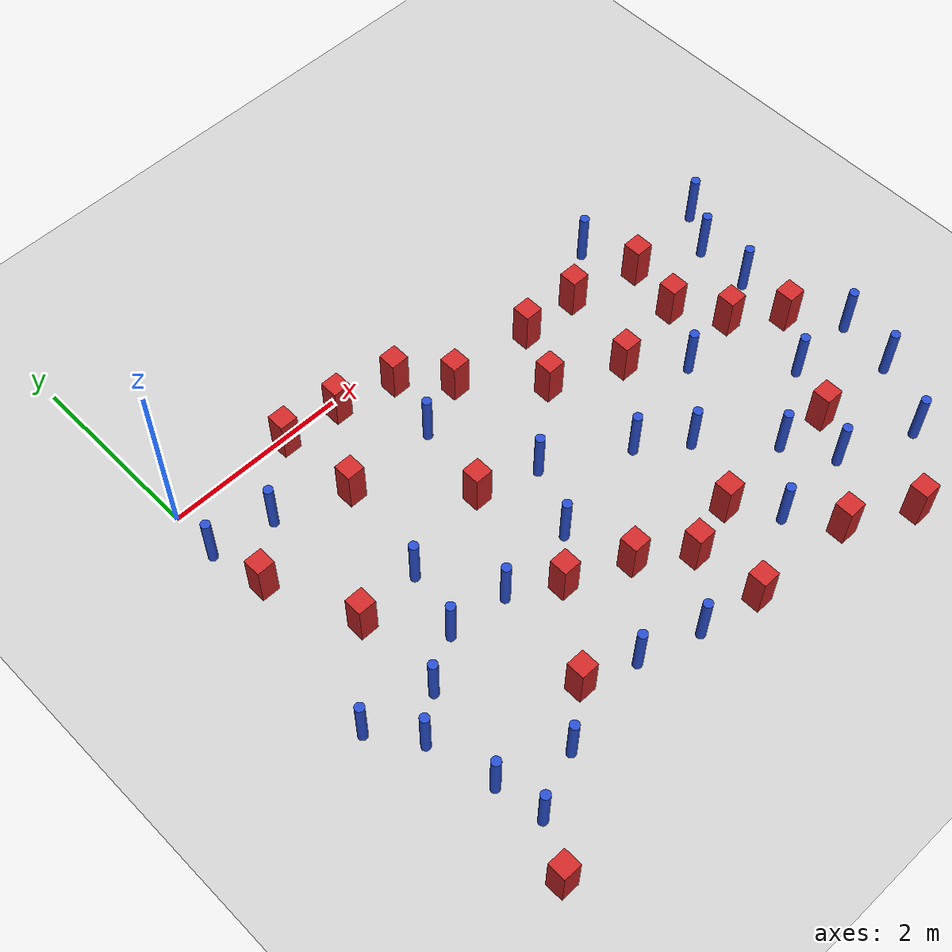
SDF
<sdf version="1.6">
 <world name="default">
  <model name="ground_plane">
   <static>1</static>
   <link name="link">
    <collision name="collision">
     <geometry><plane><normal>0 0 1</normal><size>100 100</size></plane></geometry>
     <surface><friction><ode><mu>100</mu><mu2>50</mu2></ode></friction></surface>
    </collision>
    <visual name="visual">
     <cast_shadows>0</cast_shadows>
     <geometry><plane><normal>0 0 1</normal><size>100 100</size></plane></geometry>
     <material>
      <ambient>1.0 1.0 1.0 1.0</ambient>
      <diffuse>0.8 0.8 0.8 1.0</diffuse>
      <specular>0.01 0.01 0.01 1.000000</specular>
     </material>
    </visual>
   </link>
  </model>
  <model name="pole_obstacle0">
   <static>true</static>
   <pose>2.41326666451 -0.959669748231 -3.09024884793e-07 -7.19054271912e-07 -2.11315075118e-07 -1.93935509258e-07</pose>
   <link name="link">
    <pose>0 0 0.3 0 -0 0</pose>
    <inertial>
     <mass>1</mass>
     <inertia><ixx>0.145833</ixx><ixy>0</ixy><ixz>0</ixz><iyy>0.145833</iyy><iyz>0</iyz><izz>0.125</izz></inertia>
    </inertial>
    <collision name="collision">
     <geometry><cylinder><radius>0.05</radius><length>.6</length></cylinder></geometry>
    </collision>
    <visual name="visual">
     <geometry><cylinder><radius>0.05</radius><length>.6</length></cylinder></geometry>
     <material>
      <script><name>Gazebo/Blue</name><uri>file://media/materials/scripts/gazebo.material</uri></script>
     </material>
    </visual>
   </link>
  </model>
  <model name="square_post_obstacle4">
   <static>true</static>
   <pose>1.31986433456 -0.0795674390711 -4.36207812815e-07 3.75137919937e-06 9.77721102514e-07 2.47381364184e-05</pose>
   <link name="link">
    <pose>0 0 0.25 0 -0 0</pose>
    <inertial>
     <mass>100</mass>
     <inertia>
      <ixx>0.166667</ixx>
      <ixy>0</ixy>
      <ixz>0</ixz>
      <iyy>0.166667</iyy>
      <iyz>0</iyz>
      <izz>0.166667</izz>
     </inertia>
    </inertial>
    <collision name="collision"><geometry><box><size>.2 .2 .5</size></box></geometry></collision>
    <visual name="visual">
     <geometry><box><size>.2 .2 .5</size></box></geometry>
     <material>
      <script><name>Gazebo/Red</name><uri>file://media/materials/scripts/gazebo.material</uri></script>
     </material>
    </visual>
   </link>
  </model>
  <model name="square_post_obstacle11">
   <static>true</static>
   <pose>0.119357444727 -1.15972905448 -4.36207812815e-07 3.75137919937e-06 9.77721102514e-07 2.47381364184e-05</pose>
   <link name="link">
    <pose>0 0 0.25 0 -0 0</pose>
    <inertial>
     <mass>100</mass>
     <inertia>
      <ixx>0.166667</ixx>
      <ixy>0</ixy>
      <ixz>0</ixz>
      <iyy>0.166667</iyy>
      <iyz>0</iyz>
      <izz>0.166667</izz>
     </inertia>
    </inertial>
    <collision name="collision"><geometry><box><size>.2 .2 .5</size></box></geometry></collision>
    <visual name="visual">
     <geometry><box><size>.2 .2 .5</size></box></geometry>
     <material>
      <script><name>Gazebo/Red</name><uri>file://media/materials/scripts/gazebo.material</uri></script>
     </material>
    </visual>
   </link>
  </model>
  <model name="square_post_obstacle15">
   <static>true</static>
   <pose>3.97810140342 -0.776497119024 -4.36207812815e-07 3.75137919937e-06 9.77721102514e-07 2.47381364184e-05</pose>
   <link name="link">
    <pose>0 0 0.25 0 -0 0</pose>
    <inertial>
     <mass>100</mass>
     <inertia>
      <ixx>0.166667</ixx>
      <ixy>0</ixy>
      <ixz>0</ixz>
      <iyy>0.166667</iyy>
      <iyz>0</iyz>
      <izz>0.166667</izz>
     </inertia>
    </inertial>
    <collision name="collision"><geometry><box><size>.2 .2 .5</size></box></geometry></collision>
    <visual name="visual">
     <geometry><box><size>.2 .2 .5</size></box></geometry>
     <material>
      <script><name>Gazebo/Red</name><uri>file://media/materials/scripts/gazebo.material</uri></script>
     </material>
    </visual>
   </link>
  </model>
  <model name="pole_obstacle9">
   <static>true</static>
   <pose>2.89782994441 -2.0281531749 -3.09024884793e-07 -7.19054271912e-07 -2.11315075127e-07 -1.93935509262e-07</pose>
   <link name="link">
    <pose>0 0 0.3 0 -0 0</pose>
    <inertial>
     <mass>1</mass>
     <inertia><ixx>0.145833</ixx><ixy>0</ixy><ixz>0</ixz><iyy>0.145833</iyy><iyz>0</iyz><izz>0.125</izz></inertia>
    </inertial>
    <collision name="collision">
     <geometry><cylinder><radius>0.05</radius><length>.6</length></cylinder></geometry>
    </collision>
    <visual name="visual">
     <geometry><cylinder><radius>0.05</radius><length>.6</length></cylinder></geometry>
     <material>
      <script><name>Gazebo/Blue</name><uri>file://media/materials/scripts/gazebo.material</uri></script>
     </material>
    </visual>
   </link>
  </model>
  <model name="square_post_obstacle17">
   <static>true</static>
   <pose>3.66579948599 -1.40427711125 -4.36207812815e-07 3.75137919937e-06 9.77721102514e-07 2.47381364184e-05</pose>
   <link name="link">
    <pose>0 0 0.25 0 -0 0</pose>
    <inertial>
     <mass>100</mass>
     <inertia>
      <ixx>0.166667</ixx>
      <ixy>0</ixy>
      <ixz>0</ixz>
      <iyy>0.166667</iyy>
      <iyz>0</iyz>
      <izz>0.166667</izz>
     </inertia>
    </inertial>
    <collision name="collision"><geometry><box><size>.2 .2 .5</size></box></geometry></collision>
    <visual name="visual">
     <geometry><box><size>.2 .2 .5</size></box></geometry>
     <material>
      <script><name>Gazebo/Red</name><uri>file://media/materials/scripts/gazebo.material</uri></script>
     </material>
    </visual>
   </link>
  </model>
  <model name="square_post_obstacle18">
   <static>true</static>
   <pose>2.58968893634 -0.286422892999 -4.36207812815e-07 3.75137919937e-06 9.77721102514e-07 2.47381364184e-05</pose>
   <link name="link">
    <pose>0 0 0.25 0 -0 0</pose>
    <inertial>
     <mass>100</mass>
     <inertia>
      <ixx>0.166667</ixx>
      <ixy>0</ixy>
      <ixz>0</ixz>
      <iyy>0.166667</iyy>
      <iyz>0</iyz>
      <izz>0.166667</izz>
     </inertia>
    </inertial>
    <collision name="collision"><geometry><box><size>.2 .2 .5</size></box></geometry></collision>
    <visual name="visual">
     <geometry><box><size>.2 .2 .5</size></box></geometry>
     <material>
      <script><name>Gazebo/Red</name><uri>file://media/materials/scripts/gazebo.material</uri></script>
     </material>
    </visual>
   </link>
  </model>
  <model name="square_post_obstacle20">
   <static>true</static>
   <pose>4.63659688607 -0.795210823432 -4.36207812815e-07 3.75137919937e-06 9.77721102514e-07 2.47381364184e-05</pose>
   <link name="link">
    <pose>0 0 0.25 0 -0 0</pose>
    <inertial>
     <mass>100</mass>
     <inertia>
      <ixx>0.166667</ixx>
      <ixy>0</ixy>
      <ixz>0</ixz>
      <iyy>0.166667</iyy>
      <iyz>0</iyz>
      <izz>0.166667</izz>
     </inertia>
    </inertial>
    <collision name="collision"><geometry><box><size>.2 .2 .5</size></box></geometry></collision>
    <visual name="visual">
     <geometry><box><size>.2 .2 .5</size></box></geometry>
     <material>
      <script><name>Gazebo/Red</name><uri>file://media/materials/scripts/gazebo.material</uri></script>
     </material>
    </visual>
   </link>
  </model>
  <model name="pole_obstacle14">
   <static>true</static>
   <pose>-0.220990663885 -2.92451951787 -3.09024884848e-07 -7.19054271902e-07 -2.11315075205e-07 -1.93935509288e-07</pose>
   <link name="link">
    <pose>0 0 0.3 0 -0 0</pose>
    <inertial>
     <mass>1</mass>
     <inertia><ixx>0.145833</ixx><ixy>0</ixy><ixz>0</ixz><iyy>0.145833</iyy><iyz>0</iyz><izz>0.125</izz></inertia>
    </inertial>
    <collision name="collision">
     <geometry><cylinder><radius>0.05</radius><length>.6</length></cylinder></geometry>
    </collision>
    <visual name="visual">
     <geometry><cylinder><radius>0.05</radius><length>.6</length></cylinder></geometry>
     <material>
      <script><name>Gazebo/Blue</name><uri>file://media/materials/scripts/gazebo.material</uri></script>
     </material>
    </visual>
   </link>
  </model>
  <model name="pole_obstacle33">
   <static>true</static>
   <pose>0.518498459456 -3.06528622621 -3.09024884793e-07 -7.19054271912e-07 -2.11315075126e-07 -1.93935509261e-07</pose>
   <link name="link">
    <pose>0 0 0.3 0 -0 0</pose>
    <inertial>
     <mass>1</mass>
     <inertia><ixx>0.145833</ixx><ixy>0</ixy><ixz>0</ixz><iyy>0.145833</iyy><iyz>0</iyz><izz>0.125</izz></inertia>
    </inertial>
    <collision name="collision">
     <geometry><cylinder><radius>0.05</radius><length>.6</length></cylinder></geometry>
    </collision>
    <visual name="visual">
     <geometry><cylinder><radius>0.05</radius><length>.6</length></cylinder></geometry>
     <material>
      <script><name>Gazebo/Blue</name><uri>file://media/materials/scripts/gazebo.material</uri></script>
     </material>
    </visual>
   </link>
  </model>
  <model name="pole_obstacle50">
   <static>true</static>
   <pose>0.28187132032 -4.10309851028 -3.09024884793e-07 -7.19054271912e-07 -2.11315075127e-07 -1.9393550926e-07</pose>
   <link name="link">
    <pose>0 0 0.3 0 -0 0</pose>
    <inertial>
     <mass>1</mass>
     <inertia><ixx>0.145833</ixx><ixy>0</ixy><ixz>0</ixz><iyy>0.145833</iyy><iyz>0</iyz><izz>0.125</izz></inertia>
    </inertial>
    <collision name="collision">
     <geometry><cylinder><radius>0.05</radius><length>.6</length></cylinder></geometry>
    </collision>
    <visual name="visual">
     <geometry><cylinder><radius>0.05</radius><length>.6</length></cylinder></geometry>
     <material>
      <script><name>Gazebo/Blue</name><uri>file://media/materials/scripts/gazebo.material</uri></script>
     </material>
    </visual>
   </link>
  </model>
  <model name="pole_obstacle54">
   <static>true</static>
   <pose>2.55761728568 -2.72044347075 -3.09024884793e-07 -7.19054271912e-07 -2.11315075144e-07 -1.93935509271e-07</pose>
   <link name="link">
    <pose>0 0 0.3 0 -0 0</pose>
    <inertial>
     <mass>1</mass>
     <inertia><ixx>0.145833</ixx><ixy>0</ixy><ixz>0</ixz><iyy>0.145833</iyy><iyz>0</iyz><izz>0.125</izz></inertia>
    </inertial>
    <collision name="collision">
     <geometry><cylinder><radius>0.05</radius><length>.6</length></cylinder></geometry>
    </collision>
    <visual name="visual">
     <geometry><cylinder><radius>0.05</radius><length>.6</length></cylinder></geometry>
     <material>
      <script><name>Gazebo/Blue</name><uri>file://media/materials/scripts/gazebo.material</uri></script>
     </material>
    </visual>
   </link>
  </model>
  <model name="square_post_obstacle60">
   <static>true</static>
   <pose>5.2823380912 -1.58300626166 -4.36207812815e-07 3.75137919937e-06 9.77721102514e-07 2.47381364184e-05</pose>
   <link name="link">
    <pose>0 0 0.25 0 -0 0</pose>
    <inertial>
     <mass>100</mass>
     <inertia>
      <ixx>0.166667</ixx>
      <ixy>0</ixy>
      <ixz>0</ixz>
      <iyy>0.166667</iyy>
      <iyz>0</iyz>
      <izz>0.166667</izz>
     </inertia>
    </inertial>
    <collision name="collision"><geometry><box><size>.2 .2 .5</size></box></geometry></collision>
    <visual name="visual">
     <geometry><box><size>.2 .2 .5</size></box></geometry>
     <material>
      <script><name>Gazebo/Red</name><uri>file://media/materials/scripts/gazebo.material</uri></script>
     </material>
    </visual>
   </link>
  </model>
  <model name="square_post_obstacle66">
   <static>true</static>
   <pose>4.41290259775 -1.74374216886 -4.36207812815e-07 3.75137919937e-06 9.77721102514e-07 2.47381364184e-05</pose>
   <link name="link">
    <pose>0 0 0.25 0 -0 0</pose>
    <inertial>
     <mass>100</mass>
     <inertia>
      <ixx>0.166667</ixx>
      <ixy>0</ixy>
      <ixz>0</ixz>
      <iyy>0.166667</iyy>
      <iyz>0</iyz>
      <izz>0.166667</izz>
     </inertia>
    </inertial>
    <collision name="collision"><geometry><box><size>.2 .2 .5</size></box></geometry></collision>
    <visual name="visual">
     <geometry><box><size>.2 .2 .5</size></box></geometry>
     <material>
      <script><name>Gazebo/Red</name><uri>file://media/materials/scripts/gazebo.material</uri></script>
     </material>
    </visual>
   </link>
  </model>
  <model name="pole_obstacle65">
   <static>true</static>
   <pose>1.02935842153 -2.75163102103 -3.09024884793e-07 -7.19054271912e-07 -2.11315075133e-07 -1.93935509263e-07</pose>
   <link name="link">
    <pose>0 0 0.3 0 -0 0</pose>
    <inertial>
     <mass>1</mass>
     <inertia><ixx>0.145833</ixx><ixy>0</ixy><ixz>0</ixz><iyy>0.145833</iyy><iyz>0</iyz><izz>0.125</izz></inertia>
    </inertial>
    <collision name="collision">
     <geometry><cylinder><radius>0.05</radius><length>.6</length></cylinder></geometry>
    </collision>
    <visual name="visual">
     <geometry><cylinder><radius>0.05</radius><length>.6</length></cylinder></geometry>
     <material>
      <script><name>Gazebo/Blue</name><uri>file://media/materials/scripts/gazebo.material</uri></script>
     </material>
    </visual>
   </link>
  </model>
  <model name="pole_obstacle66">
   <static>true</static>
   <pose>6.11850425659 -1.86344914233 -3.09024884793e-07 -7.19054271912e-07 -2.11315075124e-07 -1.93935509261e-07</pose>
   <link name="link">
    <pose>0 0 0.3 0 -0 0</pose>
    <inertial>
     <mass>1</mass>
     <inertia><ixx>0.145833</ixx><ixy>0</ixy><ixz>0</ixz><iyy>0.145833</iyy><iyz>0</iyz><izz>0.125</izz></inertia>
    </inertial>
    <collision name="collision">
     <geometry><cylinder><radius>0.05</radius><length>.6</length></cylinder></geometry>
    </collision>
    <visual name="visual">
     <geometry><cylinder><radius>0.05</radius><length>.6</length></cylinder></geometry>
     <material>
      <script><name>Gazebo/Blue</name><uri>file://media/materials/scripts/gazebo.material</uri></script>
     </material>
    </visual>
   </link>
  </model>
  <model name="square_post_obstacle70">
   <static>true</static>
   <pose>3.87898751134 -3.58622233639 -4.36207812815e-07 3.75137919937e-06 9.77721102514e-07 2.47381364184e-05</pose>
   <link name="link">
    <pose>0 0 0.25 0 -0 0</pose>
    <inertial>
     <mass>100</mass>
     <inertia>
      <ixx>0.166667</ixx>
      <ixy>0</ixy>
      <ixz>0</ixz>
      <iyy>0.166667</iyy>
      <iyz>0</iyz>
      <izz>0.166667</izz>
     </inertia>
    </inertial>
    <collision name="collision"><geometry><box><size>.2 .2 .5</size></box></geometry></collision>
    <visual name="visual">
     <geometry><box><size>.2 .2 .5</size></box></geometry>
     <material>
      <script><name>Gazebo/Red</name><uri>file://media/materials/scripts/gazebo.material</uri></script>
     </material>
    </visual>
   </link>
  </model>
  <model name="pole_obstacle68">
   <static>true</static>
   <pose>4.82658916682 -3.48594604864 -3.09024884793e-07 -7.19054271912e-07 -2.11315075144e-07 -1.93935509269e-07</pose>
   <link name="link">
    <pose>0 0 0.3 0 -0 0</pose>
    <inertial>
     <mass>1</mass>
     <inertia><ixx>0.145833</ixx><ixy>0</ixy><ixz>0</ixz><iyy>0.145833</iyy><iyz>0</iyz><izz>0.125</izz></inertia>
    </inertial>
    <collision name="collision">
     <geometry><cylinder><radius>0.05</radius><length>.6</length></cylinder></geometry>
    </collision>
    <visual name="visual">
     <geometry><cylinder><radius>0.05</radius><length>.6</length></cylinder></geometry>
     <material>
      <script><name>Gazebo/Blue</name><uri>file://media/materials/scripts/gazebo.material</uri></script>
     </material>
    </visual>
   </link>
  </model>
  <model name="square_post_obstacle72">
   <static>true</static>
   <pose>1.40397236533 -0.95850929428 -4.36207812815e-07 3.75137919937e-06 9.77721102514e-07 2.47381364184e-05</pose>
   <link name="link">
    <pose>0 0 0.25 0 -0 0</pose>
    <inertial>
     <mass>100</mass>
     <inertia>
      <ixx>0.166667</ixx>
      <ixy>0</ixy>
      <ixz>0</ixz>
      <iyy>0.166667</iyy>
      <iyz>0</iyz>
      <izz>0.166667</izz>
     </inertia>
    </inertial>
    <collision name="collision"><geometry><box><size>.2 .2 .5</size></box></geometry></collision>
    <visual name="visual">
     <geometry><box><size>.2 .2 .5</size></box></geometry>
     <material>
      <script><name>Gazebo/Red</name><uri>file://media/materials/scripts/gazebo.material</uri></script>
     </material>
    </visual>
   </link>
  </model>
  <model name="pole_obstacle77">
   <static>true</static>
   <pose>4.21941447735 -2.85731986962 -3.09024884793e-07 -7.19054271912e-07 -2.11315075144e-07 -1.93935509269e-07</pose>
   <link name="link">
    <pose>0 0 0.3 0 -0 0</pose>
    <inertial>
     <mass>1</mass>
     <inertia><ixx>0.145833</ixx><ixy>0</ixy><ixz>0</ixz><iyy>0.145833</iyy><iyz>0</iyz><izz>0.125</izz></inertia>
    </inertial>
    <collision name="collision">
     <geometry><cylinder><radius>0.05</radius><length>.6</length></cylinder></geometry>
    </collision>
    <visual name="visual">
     <geometry><cylinder><radius>0.05</radius><length>.6</length></cylinder></geometry>
     <material>
      <script><name>Gazebo/Blue</name><uri>file://media/materials/scripts/gazebo.material</uri></script>
     </material>
    </visual>
   </link>
  </model>
  <model name="pole_obstacle90">
   <static>true</static>
   <pose>0.648917571831 -0.673140010563 -3.09024884793e-07 -7.19054271912e-07 -2.11315075137e-07 -1.93935509266e-07</pose>
   <link name="link">
    <pose>0 0 0.3 0 -0 0</pose>
    <inertial>
     <mass>1</mass>
     <inertia><ixx>0.145833</ixx><ixy>0</ixy><ixz>0</ixz><iyy>0.145833</iyy><iyz>0</iyz><izz>0.125</izz></inertia>
    </inertial>
    <collision name="collision">
     <geometry><cylinder><radius>0.05</radius><length>.6</length></cylinder></geometry>
    </collision>
    <visual name="visual">
     <geometry><cylinder><radius>0.05</radius><length>.6</length></cylinder></geometry>
     <material>
      <script><name>Gazebo/Blue</name><uri>file://media/materials/scripts/gazebo.material</uri></script>
     </material>
    </visual>
   </link>
  </model>
  <model name="pole_obstacle96">
   <static>true</static>
   <pose>3.75226178019 -2.50110007982 -3.09024884793e-07 -7.19054271912e-07 -2.11315075144e-07 -1.93935509271e-07</pose>
   <link name="link">
    <pose>0 0 0.3 0 -0 0</pose>
    <inertial>
     <mass>1</mass>
     <inertia><ixx>0.145833</ixx><ixy>0</ixy><ixz>0</ixz><iyy>0.145833</iyy><iyz>0</iyz><izz>0.125</izz></inertia>
    </inertial>
    <collision name="collision">
     <geometry><cylinder><radius>0.05</radius><length>.6</length></cylinder></geometry>
    </collision>
    <visual name="visual">
     <geometry><cylinder><radius>0.05</radius><length>.6</length></cylinder></geometry>
     <material>
      <script><name>Gazebo/Blue</name><uri>file://media/materials/scripts/gazebo.material</uri></script>
     </material>
    </visual>
   </link>
  </model>
  <model name="square_post_obstacle86">
   <static>true</static>
   <pose>4.51893823871 -4.52230342977 -4.36207812815e-07 3.75137919937e-06 9.77721102514e-07 2.47381364184e-05</pose>
   <link name="link">
    <pose>0 0 0.25 0 -0 0</pose>
    <inertial>
     <mass>100</mass>
     <inertia>
      <ixx>0.166667</ixx>
      <ixy>0</ixy>
      <ixz>0</ixz>
      <iyy>0.166667</iyy>
      <iyz>0</iyz>
      <izz>0.166667</izz>
     </inertia>
    </inertial>
    <collision name="collision"><geometry><box><size>.2 .2 .5</size></box></geometry></collision>
    <visual name="visual">
     <geometry><box><size>.2 .2 .5</size></box></geometry>
     <material>
      <script><name>Gazebo/Red</name><uri>file://media/materials/scripts/gazebo.material</uri></script>
     </material>
    </visual>
   </link>
  </model>
  <model name="pole_obstacle98">
   <static>true</static>
   <pose>4.20196560954 -4.04424675679 -3.09024884793e-07 -7.19054271911e-07 -2.11315075159e-07 -1.93935509277e-07</pose>
   <link name="link">
    <pose>0 0 0.3 0 -0 0</pose>
    <inertial>
     <mass>1</mass>
     <inertia><ixx>0.145833</ixx><ixy>0</ixy><ixz>0</ixz><iyy>0.145833</iyy><iyz>0</iyz><izz>0.125</izz></inertia>
    </inertial>
    <collision name="collision">
     <geometry><cylinder><radius>0.05</radius><length>.6</length></cylinder></geometry>
    </collision>
    <visual name="visual">
     <geometry><cylinder><radius>0.05</radius><length>.6</length></cylinder></geometry>
     <material>
      <script><name>Gazebo/Blue</name><uri>file://media/materials/scripts/gazebo.material</uri></script>
     </material>
    </visual>
   </link>
  </model>
  <model name="pole_obstacle99">
   <static>true</static>
   <pose>6.1350902804 -1.26344898215 -3.09024884793e-07 -7.19054271912e-07 -2.11315075124e-07 -1.93935509261e-07</pose>
   <link name="link">
    <pose>0 0 0.3 0 -0 0</pose>
    <inertial>
     <mass>1</mass>
     <inertia><ixx>0.145833</ixx><ixy>0</ixy><ixz>0</ixz><iyy>0.145833</iyy><iyz>0</iyz><izz>0.125</izz></inertia>
    </inertial>
    <collision name="collision">
     <geometry><cylinder><radius>0.05</radius><length>.6</length></cylinder></geometry>
    </collision>
    <visual name="visual">
     <geometry><cylinder><radius>0.05</radius><length>.6</length></cylinder></geometry>
     <material>
      <script><name>Gazebo/Blue</name><uri>file://media/materials/scripts/gazebo.material</uri></script>
     </material>
    </visual>
   </link>
  </model>
  <model name="square_post_obstacle95">
   <static>true</static>
   <pose>5.59730763667 -2.09566339949 -4.36207812815e-07 3.75137919937e-06 9.77721102514e-07 2.47381364184e-05</pose>
   <link name="link">
    <pose>0 0 0.25 0 -0 0</pose>
    <inertial>
     <mass>100</mass>
     <inertia>
      <ixx>0.166667</ixx>
      <ixy>0</ixy>
      <ixz>0</ixz>
      <iyy>0.166667</iyy>
      <iyz>0</iyz>
      <izz>0.166667</izz>
     </inertia>
    </inertial>
    <collision name="collision"><geometry><box><size>.2 .2 .5</size></box></geometry></collision>
    <visual name="visual">
     <geometry><box><size>.2 .2 .5</size></box></geometry>
     <material>
      <script><name>Gazebo/Red</name><uri>file://media/materials/scripts/gazebo.material</uri></script>
     </material>
    </visual>
   </link>
  </model>
  <model name="square_post_obstacle96">
   <static>true</static>
   <pose>5.19046338264 -4.88125707758 -4.36207812815e-07 3.75137919937e-06 9.77721102514e-07 2.47381364184e-05</pose>
   <link name="link">
    <pose>0 0 0.25 0 -0 0</pose>
    <inertial>
     <mass>100</mass>
     <inertia>
      <ixx>0.166667</ixx>
      <ixy>0</ixy>
      <ixz>0</ixz>
      <iyy>0.166667</iyy>
      <iyz>0</iyz>
      <izz>0.166667</izz>
     </inertia>
    </inertial>
    <collision name="collision"><geometry><box><size>.2 .2 .5</size></box></geometry></collision>
    <visual name="visual">
     <geometry><box><size>.2 .2 .5</size></box></geometry>
     <material>
      <script><name>Gazebo/Red</name><uri>file://media/materials/scripts/gazebo.material</uri></script>
     </material>
    </visual>
   </link>
  </model>
  <model name="pole_obstacle112">
   <static>true</static>
   <pose>-0.0139964171408 -0.559567910575 -3.09024884793e-07 -7.19054271912e-07 -2.11315075141e-07 -1.93935509268e-07</pose>
   <link name="link">
    <pose>0 0 0.3 0 -0 0</pose>
    <inertial>
     <mass>1</mass>
     <inertia><ixx>0.145833</ixx><ixy>0</ixy><ixz>0</ixz><iyy>0.145833</iyy><iyz>0</iyz><izz>0.125</izz></inertia>
    </inertial>
    <collision name="collision">
     <geometry><cylinder><radius>0.05</radius><length>.6</length></cylinder></geometry>
    </collision>
    <visual name="visual">
     <geometry><cylinder><radius>0.05</radius><length>.6</length></cylinder></geometry>
     <material>
      <script><name>Gazebo/Blue</name><uri>file://media/materials/scripts/gazebo.material</uri></script>
     </material>
    </visual>
   </link>
  </model>
  <model name="square_post_obstacle101">
   <static>true</static>
   <pose>5.3989237762 -0.976377386213 -4.36207812815e-07 3.75137919937e-06 9.77721102514e-07 2.47381364184e-05</pose>
   <link name="link">
    <pose>0 0 0.25 0 -0 0</pose>
    <inertial>
     <mass>100</mass>
     <inertia>
      <ixx>0.166667</ixx>
      <ixy>0</ixy>
      <ixz>0</ixz>
      <iyy>0.166667</iyy>
      <iyz>0</iyz>
      <izz>0.166667</izz>
     </inertia>
    </inertial>
    <collision name="collision"><geometry><box><size>.2 .2 .5</size></box></geometry></collision>
    <visual name="visual">
     <geometry><box><size>.2 .2 .5</size></box></geometry>
     <material>
      <script><name>Gazebo/Red</name><uri>file://media/materials/scripts/gazebo.material</uri></script>
     </material>
    </visual>
   </link>
  </model>
  <model name="square_post_obstacle103">
   <static>true</static>
   <pose>5.37122392318 -3.54064676512 -4.36207812815e-07 3.75137919937e-06 9.77721102514e-07 2.47381364184e-05</pose>
   <link name="link">
    <pose>0 0 0.25 0 -0 0</pose>
    <inertial>
     <mass>100</mass>
     <inertia>
      <ixx>0.166667</ixx>
      <ixy>0</ixy>
      <ixz>0</ixz>
      <iyy>0.166667</iyy>
      <iyz>0</iyz>
      <izz>0.166667</izz>
     </inertia>
    </inertial>
    <collision name="collision"><geometry><box><size>.2 .2 .5</size></box></geometry></collision>
    <visual name="visual">
     <geometry><box><size>.2 .2 .5</size></box></geometry>
     <material>
      <script><name>Gazebo/Red</name><uri>file://media/materials/scripts/gazebo.material</uri></script>
     </material>
    </visual>
   </link>
  </model>
  <model name="square_post_obstacle109">
   <static>true</static>
   <pose>3.36845018233 -4.45114491001 -4.36207812815e-07 3.75137919937e-06 9.77721102514e-07 2.47381364184e-05</pose>
   <link name="link">
    <pose>0 0 0.25 0 -0 0</pose>
    <inertial>
     <mass>100</mass>
     <inertia>
      <ixx>0.166667</ixx>
      <ixy>0</ixy>
      <ixz>0</ixz>
      <iyy>0.166667</iyy>
      <iyz>0</iyz>
      <izz>0.166667</izz>
     </inertia>
    </inertial>
    <collision name="collision"><geometry><box><size>.2 .2 .5</size></box></geometry></collision>
    <visual name="visual">
     <geometry><box><size>.2 .2 .5</size></box></geometry>
     <material>
      <script><name>Gazebo/Red</name><uri>file://media/materials/scripts/gazebo.material</uri></script>
     </material>
    </visual>
   </link>
  </model>
  <model name="pole_obstacle123">
   <static>true</static>
   <pose>5.91323952047 -4.3009693776 -3.09024884793e-07 -7.19054271911e-07 -2.1131507516e-07 -1.93935509277e-07</pose>
   <link name="link">
    <pose>0 0 0.3 0 -0 0</pose>
    <inertial>
     <mass>1</mass>
     <inertia><ixx>0.145833</ixx><ixy>0</ixy><ixz>0</ixz><iyy>0.145833</iyy><iyz>0</iyz><izz>0.125</izz></inertia>
    </inertial>
    <collision name="collision">
     <geometry><cylinder><radius>0.05</radius><length>.6</length></cylinder></geometry>
    </collision>
    <visual name="visual">
     <geometry><cylinder><radius>0.05</radius><length>.6</length></cylinder></geometry>
     <material>
      <script><name>Gazebo/Blue</name><uri>file://media/materials/scripts/gazebo.material</uri></script>
     </material>
    </visual>
   </link>
  </model>
  <model name="square_post_obstacle113">
   <static>true</static>
   <pose>2.25444051519 -1.82888168617 -4.36207812815e-07 3.75137919937e-06 9.77721102514e-07 2.47381364184e-05</pose>
   <link name="link">
    <pose>0 0 0.25 0 -0 0</pose>
    <inertial>
     <mass>100</mass>
     <inertia>
      <ixx>0.166667</ixx>
      <ixy>0</ixy>
      <ixz>0</ixz>
      <iyy>0.166667</iyy>
      <iyz>0</iyz>
      <izz>0.166667</izz>
     </inertia>
    </inertial>
    <collision name="collision"><geometry><box><size>.2 .2 .5</size></box></geometry></collision>
    <visual name="visual">
     <geometry><box><size>.2 .2 .5</size></box></geometry>
     <material>
      <script><name>Gazebo/Red</name><uri>file://media/materials/scripts/gazebo.material</uri></script>
     </material>
    </visual>
   </link>
  </model>
  <model name="square_post_obstacle116">
   <static>true</static>
   <pose>2.14698729673 -3.10571522279 -4.36207812815e-07 3.75137919937e-06 9.77721102514e-07 2.47381364184e-05</pose>
   <link name="link">
    <pose>0 0 0.25 0 -0 0</pose>
    <inertial>
     <mass>100</mass>
     <inertia>
      <ixx>0.166667</ixx>
      <ixy>0</ixy>
      <ixz>0</ixz>
      <iyy>0.166667</iyy>
      <iyz>0</iyz>
      <izz>0.166667</izz>
     </inertia>
    </inertial>
    <collision name="collision"><geometry><box><size>.2 .2 .5</size></box></geometry></collision>
    <visual name="visual">
     <geometry><box><size>.2 .2 .5</size></box></geometry>
     <material>
      <script><name>Gazebo/Red</name><uri>file://media/materials/scripts/gazebo.material</uri></script>
     </material>
    </visual>
   </link>
  </model>
  <model name="pole_obstacle138">
   <static>true</static>
   <pose>5.1872905552 -0.400452914506 -3.09024884793e-07 -7.19054271912e-07 -2.11315075138e-07 -1.93935509266e-07</pose>
   <link name="link">
    <pose>0 0 0.3 0 -0 0</pose>
    <inertial>
     <mass>1</mass>
     <inertia><ixx>0.145833</ixx><ixy>0</ixy><ixz>0</ixz><iyy>0.145833</iyy><iyz>0</iyz><izz>0.125</izz></inertia>
    </inertial>
    <collision name="collision">
     <geometry><cylinder><radius>0.05</radius><length>.6</length></cylinder></geometry>
    </collision>
    <visual name="visual">
     <geometry><cylinder><radius>0.05</radius><length>.6</length></cylinder></geometry>
     <material>
      <script><name>Gazebo/Blue</name><uri>file://media/materials/scripts/gazebo.material</uri></script>
     </material>
    </visual>
   </link>
  </model>
  <model name="square_post_obstacle125">
   <static>true</static>
   <pose>2.7895223594 -3.385273972 -4.36207812815e-07 3.75137919937e-06 9.77721102514e-07 2.47381364184e-05</pose>
   <link name="link">
    <pose>0 0 0.25 0 -0 0</pose>
    <inertial>
     <mass>100</mass>
     <inertia>
      <ixx>0.166667</ixx>
      <ixy>0</ixy>
      <ixz>0</ixz>
      <iyy>0.166667</iyy>
      <iyz>0</iyz>
      <izz>0.166667</izz>
     </inertia>
    </inertial>
    <collision name="collision"><geometry><box><size>.2 .2 .5</size></box></geometry></collision>
    <visual name="visual">
     <geometry><box><size>.2 .2 .5</size></box></geometry>
     <material>
      <script><name>Gazebo/Red</name><uri>file://media/materials/scripts/gazebo.material</uri></script>
     </material>
    </visual>
   </link>
  </model>
  <model name="square_post_obstacle133">
   <static>true</static>
   <pose>1.95217250608 -0.140122279689 -4.36207812815e-07 3.75137919937e-06 9.77721102514e-07 2.47381364184e-05</pose>
   <link name="link">
    <pose>0 0 0.25 0 -0 0</pose>
    <inertial>
     <mass>100</mass>
     <inertia>
      <ixx>0.166667</ixx>
      <ixy>0</ixy>
      <ixz>0</ixz>
      <iyy>0.166667</iyy>
      <iyz>0</iyz>
      <izz>0.166667</izz>
     </inertia>
    </inertial>
    <collision name="collision"><geometry><box><size>.2 .2 .5</size></box></geometry></collision>
    <visual name="visual">
     <geometry><box><size>.2 .2 .5</size></box></geometry>
     <material>
      <script><name>Gazebo/Red</name><uri>file://media/materials/scripts/gazebo.material</uri></script>
     </material>
    </visual>
   </link>
  </model>
  <model name="square_post_obstacle135">
   <static>true</static>
   <pose>0.514197295015 -2.10730715126 -4.36207812815e-07 3.75137919937e-06 9.77721102514e-07 2.47381364184e-05</pose>
   <link name="link">
    <pose>0 0 0.25 0 -0 0</pose>
    <inertial>
     <mass>100</mass>
     <inertia>
      <ixx>0.166667</ixx>
      <ixy>0</ixy>
      <ixz>0</ixz>
      <iyy>0.166667</iyy>
      <iyz>0</iyz>
      <izz>0.166667</izz>
     </inertia>
    </inertial>
    <collision name="collision"><geometry><box><size>.2 .2 .5</size></box></geometry></collision>
    <visual name="visual">
     <geometry><box><size>.2 .2 .5</size></box></geometry>
     <material>
      <script><name>Gazebo/Red</name><uri>file://media/materials/scripts/gazebo.material</uri></script>
     </material>
    </visual>
   </link>
  </model>
  <model name="pole_obstacle145">
   <static>true</static>
   <pose>1.00264491053 -4.33238382507 -3.09024884793e-07 -7.19054271912e-07 -2.11315075136e-07 -1.93935509265e-07</pose>
   <link name="link">
    <pose>0 0 0.3 0 -0 0</pose>
    <inertial>
     <mass>1</mass>
     <inertia><ixx>0.145833</ixx><ixy>0</ixy><ixz>0</ixz><iyy>0.145833</iyy><iyz>0</iyz><izz>0.125</izz></inertia>
    </inertial>
    <collision name="collision">
     <geometry><cylinder><radius>0.05</radius><length>.6</length></cylinder></geometry>
    </collision>
    <visual name="visual">
     <geometry><cylinder><radius>0.05</radius><length>.6</length></cylinder></geometry>
     <material>
      <script><name>Gazebo/Blue</name><uri>file://media/materials/scripts/gazebo.material</uri></script>
     </material>
    </visual>
   </link>
  </model>
  <model name="square_post_obstacle148">
   <static>true</static>
   <pose>3.00164237541 -0.732582777711 -4.36207812815e-07 3.75137919937e-06 9.77721102514e-07 2.47381364184e-05</pose>
   <link name="link">
    <pose>0 0 0.25 0 -0 0</pose>
    <inertial>
     <mass>100</mass>
     <inertia>
      <ixx>0.166667</ixx>
      <ixy>0</ixy>
      <ixz>0</ixz>
      <iyy>0.166667</iyy>
      <iyz>0</iyz>
      <izz>0.166667</izz>
     </inertia>
    </inertial>
    <collision name="collision"><geometry><box><size>.2 .2 .5</size></box></geometry></collision>
    <visual name="visual">
     <geometry><box><size>.2 .2 .5</size></box></geometry>
     <material>
      <script><name>Gazebo/Red</name><uri>file://media/materials/scripts/gazebo.material</uri></script>
     </material>
    </visual>
   </link>
  </model>
  <model name="pole_obstacle157">
   <static>true</static>
   <pose>6.44574076959 -2.97155935147 -3.09024884793e-07 -7.19054271912e-07 -2.11315075144e-07 -1.93935509269e-07</pose>
   <link name="link">
    <pose>0 0 0.3 0 -0 0</pose>
    <inertial>
     <mass>1</mass>
     <inertia><ixx>0.145833</ixx><ixy>0</ixy><ixz>0</ixz><iyy>0.145833</iyy><iyz>0</iyz><izz>0.125</izz></inertia>
    </inertial>
    <collision name="collision">
     <geometry><cylinder><radius>0.05</radius><length>.6</length></cylinder></geometry>
    </collision>
    <visual name="visual">
     <geometry><cylinder><radius>0.05</radius><length>.6</length></cylinder></geometry>
     <material>
      <script><name>Gazebo/Blue</name><uri>file://media/materials/scripts/gazebo.material</uri></script>
     </material>
    </visual>
   </link>
  </model>
  <model name="pole_obstacle158">
   <static>true</static>
   <pose>4.89077714877 -2.20599566271 -3.09024884793e-07 -7.19054271912e-07 -2.11315075144e-07 -1.93935509269e-07</pose>
   <link name="link">
    <pose>0 0 0.3 0 -0 0</pose>
    <inertial>
     <mass>1</mass>
     <inertia><ixx>0.145833</ixx><ixy>0</ixy><ixz>0</ixz><iyy>0.145833</iyy><iyz>0</iyz><izz>0.125</izz></inertia>
    </inertial>
    <collision name="collision">
     <geometry><cylinder><radius>0.05</radius><length>.6</length></cylinder></geometry>
    </collision>
    <visual name="visual">
     <geometry><cylinder><radius>0.05</radius><length>.6</length></cylinder></geometry>
     <material>
      <script><name>Gazebo/Blue</name><uri>file://media/materials/scripts/gazebo.material</uri></script>
     </material>
    </visual>
   </link>
  </model>
  <model name="square_post_obstacle152">
   <static>true</static>
   <pose>0.0819762297891 -5.1194145707 -4.36207812815e-07 3.75137919937e-06 9.77721102514e-07 2.47381364184e-05</pose>
   <link name="link">
    <pose>0 0 0.25 0 -0 0</pose>
    <inertial>
     <mass>100</mass>
     <inertia>
      <ixx>0.166667</ixx>
      <ixy>0</ixy>
      <ixz>0</ixz>
      <iyy>0.166667</iyy>
      <iyz>0</iyz>
      <izz>0.166667</izz>
     </inertia>
    </inertial>
    <collision name="collision"><geometry><box><size>.2 .2 .5</size></box></geometry></collision>
    <visual name="visual">
     <geometry><box><size>.2 .2 .5</size></box></geometry>
     <material>
      <script><name>Gazebo/Red</name><uri>file://media/materials/scripts/gazebo.material</uri></script>
     </material>
    </visual>
   </link>
  </model>
  <model name="pole_obstacle167">
   <static>true</static>
   <pose>1.67049686784 -2.81420251883 -3.09024884793e-07 -7.19054271912e-07 -2.11315075132e-07 -1.93935509263e-07</pose>
   <link name="link">
    <pose>0 0 0.3 0 -0 0</pose>
    <inertial>
     <mass>1</mass>
     <inertia><ixx>0.145833</ixx><ixy>0</ixy><ixz>0</ixz><iyy>0.145833</iyy><iyz>0</iyz><izz>0.125</izz></inertia>
    </inertial>
    <collision name="collision">
     <geometry><cylinder><radius>0.05</radius><length>.6</length></cylinder></geometry>
    </collision>
    <visual name="visual">
     <geometry><cylinder><radius>0.05</radius><length>.6</length></cylinder></geometry>
     <material>
      <script><name>Gazebo/Blue</name><uri>file://media/materials/scripts/gazebo.material</uri></script>
     </material>
    </visual>
   </link>
  </model>
  <model name="pole_obstacle168">
   <static>true</static>
   <pose>5.65102588703 -3.00053529278 -3.09024884793e-07 -7.19054271912e-07 -2.11315075144e-07 -1.93935509269e-07</pose>
   <link name="link">
    <pose>0 0 0.3 0 -0 0</pose>
    <inertial>
     <mass>1</mass>
     <inertia><ixx>0.145833</ixx><ixy>0</ixy><ixz>0</ixz><iyy>0.145833</iyy><iyz>0</iyz><izz>0.125</izz></inertia>
    </inertial>
    <collision name="collision">
     <geometry><cylinder><radius>0.05</radius><length>.6</length></cylinder></geometry>
    </collision>
    <visual name="visual">
     <geometry><cylinder><radius>0.05</radius><length>.6</length></cylinder></geometry>
     <material>
      <script><name>Gazebo/Blue</name><uri>file://media/materials/scripts/gazebo.material</uri></script>
     </material>
    </visual>
   </link>
  </model>
  <model name="pole_obstacle180">
   <static>true</static>
   <pose>0.116100996393 -3.38873523769 -3.09024884793e-07 -7.19054271912e-07 -2.11315075133e-07 -1.93935509264e-07</pose>
   <link name="link">
    <pose>0 0 0.3 0 -0 0</pose>
    <inertial>
     <mass>1</mass>
     <inertia><ixx>0.145833</ixx><ixy>0</ixy><ixz>0</ixz><iyy>0.145833</iyy><iyz>0</iyz><izz>0.125</izz></inertia>
    </inertial>
    <collision name="collision">
     <geometry><cylinder><radius>0.05</radius><length>.6</length></cylinder></geometry>
    </collision>
    <visual name="visual">
     <geometry><cylinder><radius>0.05</radius><length>.6</length></cylinder></geometry>
     <material>
      <script><name>Gazebo/Blue</name><uri>file://media/materials/scripts/gazebo.material</uri></script>
     </material>
    </visual>
   </link>
  </model>
  <model name="square_post_obstacle174">
   <static>true</static>
   <pose>3.28300029125 -3.74326806342 -4.36207812815e-07 3.75137919937e-06 9.77721102514e-07 2.47381364184e-05</pose>
   <link name="link">
    <pose>0 0 0.25 0 -0 0</pose>
    <inertial>
     <mass>100</mass>
     <inertia>
      <ixx>0.166667</ixx>
      <ixy>0</ixy>
      <ixz>0</ixz>
      <iyy>0.166667</iyy>
      <iyz>0</iyz>
      <izz>0.166667</izz>
     </inertia>
    </inertial>
    <collision name="collision"><geometry><box><size>.2 .2 .5</size></box></geometry></collision>
    <visual name="visual">
     <geometry><box><size>.2 .2 .5</size></box></geometry>
     <material>
      <script><name>Gazebo/Red</name><uri>file://media/materials/scripts/gazebo.material</uri></script>
     </material>
    </visual>
   </link>
  </model>
  <model name="pole_obstacle189">
   <static>true</static>
   <pose>6.41677806997 -0.844670262875 -3.09024884793e-07 -7.19054271912e-07 -2.11315075134e-07 -1.93935509265e-07</pose>
   <link name="link">
    <pose>0 0 0.3 0 -0 0</pose>
    <inertial>
     <mass>1</mass>
     <inertia><ixx>0.145833</ixx><ixy>0</ixy><ixz>0</ixz><iyy>0.145833</iyy><iyz>0</iyz><izz>0.125</izz></inertia>
    </inertial>
    <collision name="collision">
     <geometry><cylinder><radius>0.05</radius><length>.6</length></cylinder></geometry>
    </collision>
    <visual name="visual">
     <geometry><cylinder><radius>0.05</radius><length>.6</length></cylinder></geometry>
     <material>
      <script><name>Gazebo/Blue</name><uri>file://media/materials/scripts/gazebo.material</uri></script>
     </material>
    </visual>
   </link>
  </model>
  <model name="square_post_obstacle194">
   <static>true</static>
   <pose>6.07566678629 -2.46401576025 -4.36207812815e-07 3.75137919937e-06 9.77721102514e-07 2.47381364184e-05</pose>
   <link name="link">
    <pose>0 0 0.25 0 -0 0</pose>
    <inertial>
     <mass>100</mass>
     <inertia>
      <ixx>0.166667</ixx>
      <ixy>0</ixy>
      <ixz>0</ixz>
      <iyy>0.166667</iyy>
      <iyz>0</iyz>
      <izz>0.166667</izz>
     </inertia>
    </inertial>
    <collision name="collision"><geometry><box><size>.2 .2 .5</size></box></geometry></collision>
    <visual name="visual">
     <geometry><box><size>.2 .2 .5</size></box></geometry>
     <material>
      <script><name>Gazebo/Red</name><uri>file://media/materials/scripts/gazebo.material</uri></script>
     </material>
    </visual>
   </link>
  </model>
  <model name="pole_obstacle202">
   <static>true</static>
   <pose>6.32881073986 -3.59502787914 -3.09024884793e-07 -7.19054271912e-07 -2.11315075144e-07 -1.93935509269e-07</pose>
   <link name="link">
    <pose>0 0 0.3 0 -0 0</pose>
    <inertial>
     <mass>1</mass>
     <inertia><ixx>0.145833</ixx><ixy>0</ixy><ixz>0</ixz><iyy>0.145833</iyy><iyz>0</iyz><izz>0.125</izz></inertia>
    </inertial>
    <collision name="collision">
     <geometry><cylinder><radius>0.05</radius><length>.6</length></cylinder></geometry>
    </collision>
    <visual name="visual">
     <geometry><cylinder><radius>0.05</radius><length>.6</length></cylinder></geometry>
     <material>
      <script><name>Gazebo/Blue</name><uri>file://media/materials/scripts/gazebo.material</uri></script>
     </material>
    </visual>
   </link>
  </model>
  <model name="pole_obstacle209">
   <static>true</static>
   <pose>2.71626526419 -4.33449365795 -3.09024884793e-07 -7.19054271912e-07 -2.11315075134e-07 -1.93935509266e-07</pose>
   <link name="link">
    <pose>0 0 0.3 0 -0 0</pose>
    <inertial>
     <mass>1</mass>
     <inertia><ixx>0.145833</ixx><ixy>0</ixy><ixz>0</ixz><iyy>0.145833</iyy><iyz>0</iyz><izz>0.125</izz></inertia>
    </inertial>
    <collision name="collision">
     <geometry><cylinder><radius>0.05</radius><length>.6</length></cylinder></geometry>
    </collision>
    <visual name="visual">
     <geometry><cylinder><radius>0.05</radius><length>.6</length></cylinder></geometry>
     <material>
      <script><name>Gazebo/Blue</name><uri>file://media/materials/scripts/gazebo.material</uri></script>
     </material>
    </visual>
   </link>
  </model>
  <model name="pole_obstacle210">
   <static>true</static>
   <pose>5.10925719426 -3.98219455522 -3.09024884793e-07 -7.19054271912e-07 -2.11315075139e-07 -1.93935509266e-07</pose>
   <link name="link">
    <pose>0 0 0.3 0 -0 0</pose>
    <inertial>
     <mass>1</mass>
     <inertia><ixx>0.145833</ixx><ixy>0</ixy><ixz>0</ixz><iyy>0.145833</iyy><iyz>0</iyz><izz>0.125</izz></inertia>
    </inertial>
    <collision name="collision">
     <geometry><cylinder><radius>0.05</radius><length>.6</length></cylinder></geometry>
    </collision>
    <visual name="visual">
     <geometry><cylinder><radius>0.05</radius><length>.6</length></cylinder></geometry>
     <material>
      <script><name>Gazebo/Blue</name><uri>file://media/materials/scripts/gazebo.material</uri></script>
     </material>
    </visual>
   </link>
  </model>
  <model name="pole_obstacle216">
   <static>true</static>
   <pose>0.36979007187 -4.60721059276 -3.09024884793e-07 -7.19054271912e-07 -2.1131507513e-07 -1.93935509262e-07</pose>
   <link name="link">
    <pose>0 0 0.3 0 -0 0</pose>
    <inertial>
     <mass>1</mass>
     <inertia><ixx>0.145833</ixx><ixy>0</ixy><ixz>0</ixz><iyy>0.145833</iyy><iyz>0</iyz><izz>0.125</izz></inertia>
    </inertial>
    <collision name="collision">
     <geometry><cylinder><radius>0.05</radius><length>.6</length></cylinder></geometry>
    </collision>
    <visual name="visual">
     <geometry><cylinder><radius>0.05</radius><length>.6</length></cylinder></geometry>
     <material>
      <script><name>Gazebo/Blue</name><uri>file://media/materials/scripts/gazebo.material</uri></script>
     </material>
    </visual>
   </link>
  </model>
  <model name="pole_obstacle218">
   <static>true</static>
   <pose>1.21853687381 -2.05999238577 -3.09024884793e-07 -7.19054271912e-07 -2.11315075132e-07 -1.93935509263e-07</pose>
   <link name="link">
    <pose>0 0 0.3 0 -0 0</pose>
    <inertial>
     <mass>1</mass>
     <inertia><ixx>0.145833</ixx><ixy>0</ixy><ixz>0</ixz><iyy>0.145833</iyy><iyz>0</iyz><izz>0.125</izz></inertia>
    </inertial>
    <collision name="collision">
     <geometry><cylinder><radius>0.05</radius><length>.6</length></cylinder></geometry>
    </collision>
    <visual name="visual">
     <geometry><cylinder><radius>0.05</radius><length>.6</length></cylinder></geometry>
     <material>
      <script><name>Gazebo/Blue</name><uri>file://media/materials/scripts/gazebo.material</uri></script>
     </material>
    </visual>
   </link>
  </model>
  <model name="square_post_obstacle202">
   <static>true</static>
   <pose>1.51052841585 -3.94487549806 -4.36207812815e-07 3.75137919937e-06 9.77721102514e-07 2.47381364184e-05</pose>
   <link name="link">
    <pose>0 0 0.25 0 -0 0</pose>
    <inertial>
     <mass>100</mass>
     <inertia>
      <ixx>0.166667</ixx>
      <ixy>0</ixy>
      <ixz>0</ixz>
      <iyy>0.166667</iyy>
      <iyz>0</iyz>
      <izz>0.166667</izz>
     </inertia>
    </inertial>
    <collision name="collision"><geometry><box><size>.2 .2 .5</size></box></geometry></collision>
    <visual name="visual">
     <geometry><box><size>.2 .2 .5</size></box></geometry>
     <material>
      <script><name>Gazebo/Red</name><uri>file://media/materials/scripts/gazebo.material</uri></script>
     </material>
    </visual>
   </link>
  </model>
  <model name="pole_obstacle226">
   <static>true</static>
   <pose>2.06750000976 -4.13880997922 -3.09024884793e-07 -7.19054271912e-07 -2.11315075134e-07 -1.93935509266e-07</pose>
   <link name="link">
    <pose>0 0 0.3 0 -0 0</pose>
    <inertial>
     <mass>1</mass>
     <inertia><ixx>0.145833</ixx><ixy>0</ixy><ixz>0</ixz><iyy>0.145833</iyy><iyz>0</iyz><izz>0.125</izz></inertia>
    </inertial>
    <collision name="collision">
     <geometry><cylinder><radius>0.05</radius><length>.6</length></cylinder></geometry>
    </collision>
    <visual name="visual">
     <geometry><cylinder><radius>0.05</radius><length>.6</length></cylinder></geometry>
     <material>
      <script><name>Gazebo/Blue</name><uri>file://media/materials/scripts/gazebo.material</uri></script>
     </material>
    </visual>
   </link>
  </model>
 </world>
</sdf>
